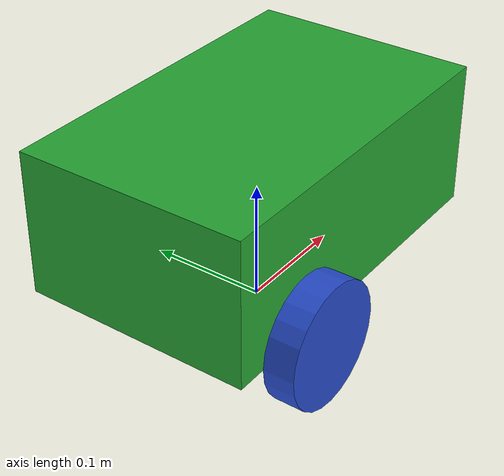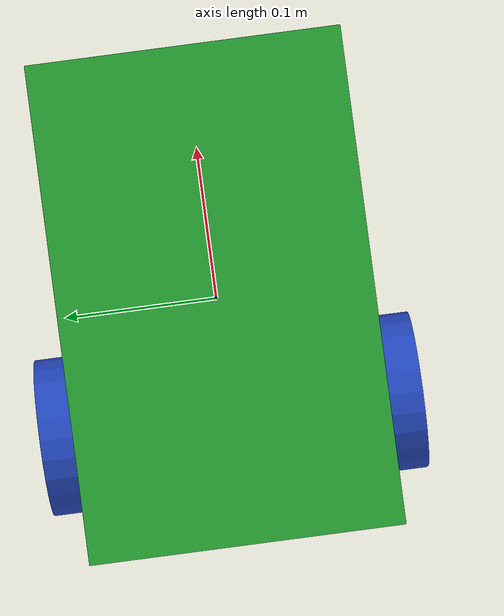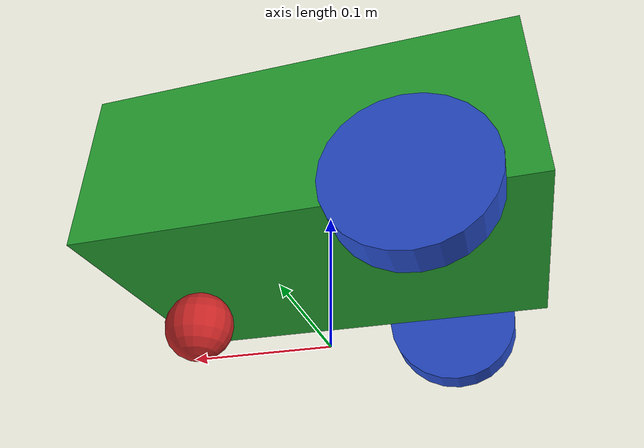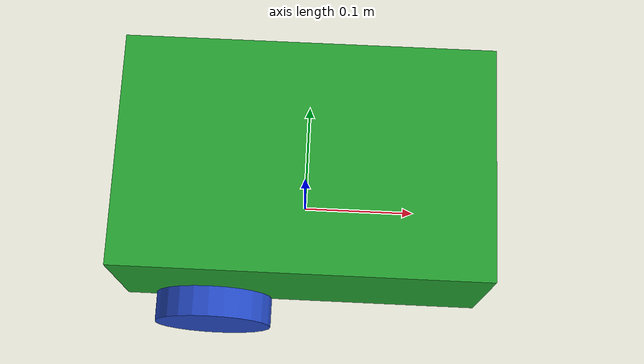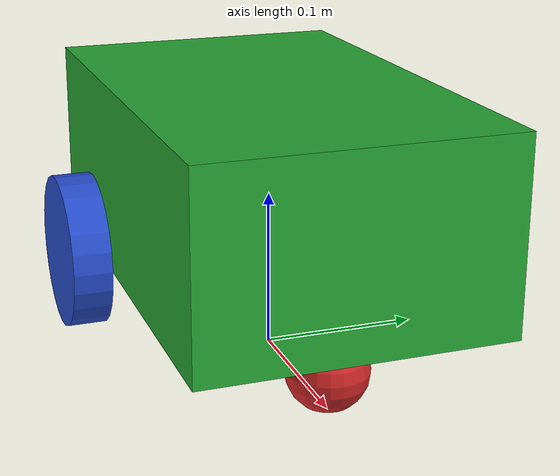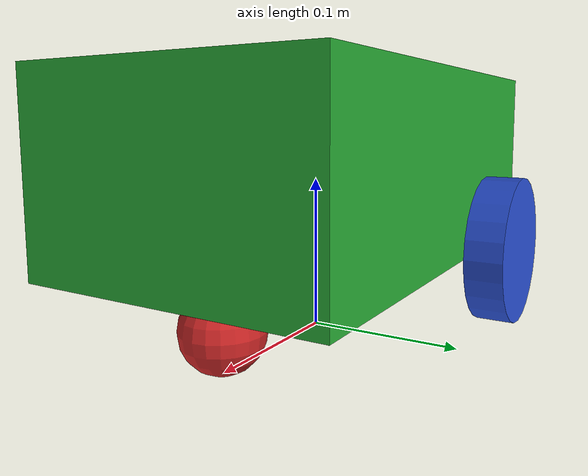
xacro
<?xml version="1.0" encoding="UTF-8"?>
<robot xmlns:xacro="http://www.ros.org/wiki/xacro">
    <!-- var using xacro-->
    <xacro:property name="base_length" value="0.3" />
    <xacro:property name="base_width" value="0.19" />
    <xacro:property name="base_height" value="0.12" />
    <xacro:property name="wheel_radius" value="0.05" />
    <xacro:property name="wheel_length" value="0.025" />
    <xacro:property name="upper_base_length" value="0.4" />
    <xacro:property name="upper_base_width" value="0.4" />
    <xacro:property name="upper_base_height" value="0.8"/>
    <!-- Define links -->
    <link name="base_footprint" />

    <link name="base_link">
        <visual>
            <geometry>
                <box size="${base_length} ${base_width} ${base_height}" />
            </geometry>
            <origin xyz="0 0 ${base_height/2.0}" rpy="0 0 0" />
            <material name="green" />
        </visual>

        <collision>
            <geometry>
                <box size="${base_length} ${base_width} ${base_height}" />
            </geometry>
            <origin xyz="0 0 ${base_height/2.0}" rpy="0 0 0" />
            <material name="green" />
        </collision>

        <xacro:box_inertia m="5.0" l="${base_length}" w="${base_width}" h="${base_height}"
            xyz="0 0 ${base_height/2.0}" rpy="0 0 0" />
    </link>

    <!--Function
    with xacro-->
    <link name="left_wheel_link">
            <visual>
                <geometry>
                    <cylinder radius="${wheel_radius}" length="${wheel_length}" />
                </geometry>
                <origin xyz="0 0 0" rpy="${pi/2.0} 0 0" />
                <material name="blue" />
            </visual>

            <collision>
                <geometry>
                    <cylinder radius="${wheel_radius}" length="${wheel_length}" />
                </geometry>
                <origin xyz="0 0 0" rpy="${pi/2.0} 0 0" />
            </collision>
            <xacro:cylinder_inertia m="1.0" h="${wheel_length}" r="${wheel_radius}"
                xyz="0 0 0" rpy="${pi/2.0} 0 0" />
    </link>
     <link name="right_wheel_link">
            <visual>
                <geometry>
                    <cylinder radius="${wheel_radius}" length="${wheel_length}" />
                </geometry>
                <origin xyz="0 0 0" rpy="${pi/2.0} 0 0" />
                <material name="blue" />
            </visual>

            <collision>
                <geometry>
                    <cylinder radius="${wheel_radius}" length="${wheel_length}" />
                </geometry>
                <origin xyz="0 0 0" rpy="${pi/2.0} 0 0" />
            </collision>
            <xacro:cylinder_inertia m="1.0" h="${wheel_length}" r="${wheel_radius}"
                xyz="0 0 0" rpy="${pi/2.0} 0 0" />
    </link>

    <!-- Use the macro to create wheel links -->

    <link name="caster_wheel_link">
        <visual>
            <geometry>
                <sphere radius="${wheel_radius / 2.0}" />
            </geometry>
            <origin xyz="0 0 0" rpy="0 0 0" />
            <material name="red" />
        </visual>
        <collision>
            <geometry>
                <sphere radius="${wheel_radius / 2.0}" />
            </geometry>
            <origin xyz="0 0 0" rpy="0 0 0" />
        </collision>
        <xacro:shpere_inertia m="5.0" r="${wheel_radius / 2.0}"
            xyz="0 0 0" rpy="0 0 0" />
    </link>

    <!-- Define joints -->
    <joint name="base_joint" type="fixed">
        <parent link="base_footprint" />
        <child link="base_link" />
        <origin xyz="0 0 ${wheel_radius}" rpy="0 0 0" />
    </joint>

    <joint name="base_right_wheel_joint" type="continuous">
        <parent link="base_link" />
        <child link="right_wheel_link" />
        <origin xyz="${-base_length / 4.0} ${-(base_width + wheel_length) / 2.0 } 0" rpy="0 0 0" />
        <axis xyz="0 1 0" />
    </joint>

    <joint name="base_left_wheel_joint" type="continuous">
        <parent link="base_link" />
        <child link="left_wheel_link" />
        <origin xyz="${-base_length / 4.0} ${(base_width + wheel_length) / 2.0 } 0" rpy="0 0 0" />
        <axis xyz="0 1 0" />
    </joint>

    <joint name="base_caster_wheel_joint" type="fixed">
        <parent link="base_link" />
        <child link="caster_wheel_link" />
        <origin xyz="${base_length / 3.0} 0 ${-wheel_radius / 2.0}" rpy="0 0 0" />
        <axis xyz="0 1 0" />
    </joint>

</robot>
